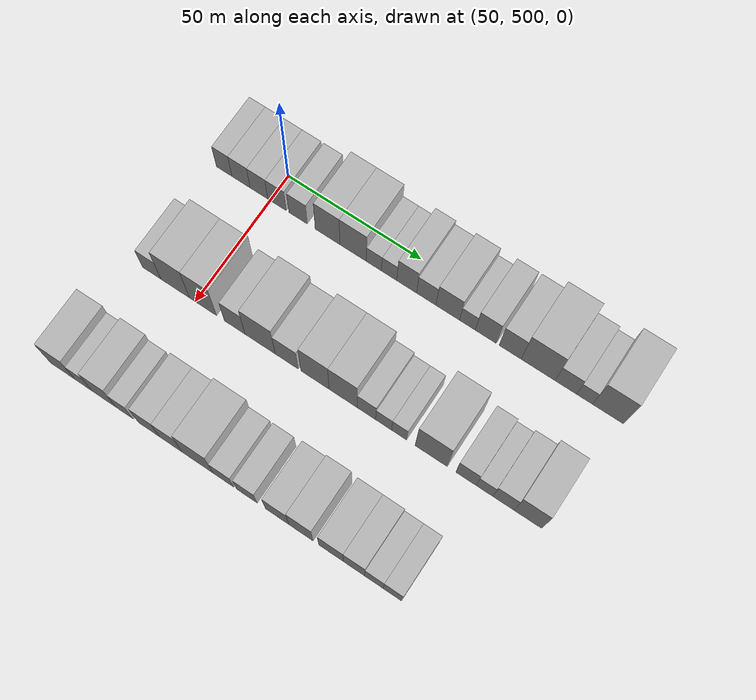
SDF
<sdf version="1.6">
 <world name="default">
  <model name="building_126">
   <static>1</static>
   <pose>50.0000 482.4028 0 0.000000 0.000000 0.000000</pose>
   <link name="link">
    <pose>0 0 7.50 0 0 0</pose>
    <collision name="collision"><geometry><box><size>20.0000 6.0003 15.0000</size></box></geometry></collision>
    <visual name="visual">
     <cast_shadows>0</cast_shadows>
     <geometry><box><size>20.0000 6.0003 15.0000</size></box></geometry>
     <material>
      <script>
       <uri>model://HANNAS_wall/materials/scripts</uri>
       <uri>model://HANNAS_wall/materials/textures</uri>
       <name>vrc/HANNAS_wall</name>
      </script>
     </material>
    </visual>
   </link>
  </model>
  <model name="building_127">
   <static>1</static>
   <pose>50.0000 488.8946 0 0.000000 0.000000 0.000000</pose>
   <link name="link">
    <pose>0 0 7.50 0 0 0</pose>
    <collision name="collision"><geometry><box><size>20.0000 6.9833 15.0000</size></box></geometry></collision>
    <visual name="visual">
     <cast_shadows>0</cast_shadows>
     <geometry><box><size>20.0000 6.9833 15.0000</size></box></geometry>
     <material>
      <script>
       <uri>model://HANNAS_wall/materials/scripts</uri>
       <uri>model://HANNAS_wall/materials/textures</uri>
       <name>vrc/HANNAS_wall</name>
      </script>
     </material>
    </visual>
   </link>
  </model>
  <model name="building_128">
   <static>1</static>
   <pose>50.0000 495.7840 0 0.000000 0.000000 0.000000</pose>
   <link name="link">
    <pose>0 0 7.50 0 0 0</pose>
    <collision name="collision"><geometry><box><size>20.0000 6.7955 15.0000</size></box></geometry></collision>
    <visual name="visual">
     <cast_shadows>0</cast_shadows>
     <geometry><box><size>20.0000 6.7955 15.0000</size></box></geometry>
     <material>
      <script>
       <uri>model://HANNAS_wall/materials/scripts</uri>
       <uri>model://HANNAS_wall/materials/textures</uri>
       <name>vrc/HANNAS_wall</name>
      </script>
     </material>
    </visual>
   </link>
  </model>
  <model name="building_129">
   <static>1</static>
   <pose>50.0000 502.6778 0 0.000000 0.000000 0.000000</pose>
   <link name="link">
    <pose>0 0 7.50 0 0 0</pose>
    <collision name="collision"><geometry><box><size>20.0000 6.9922 15.0000</size></box></geometry></collision>
    <visual name="visual">
     <cast_shadows>0</cast_shadows>
     <geometry><box><size>20.0000 6.9922 15.0000</size></box></geometry>
     <material>
      <script>
       <uri>model://HANNAS_wall/materials/scripts</uri>
       <uri>model://HANNAS_wall/materials/textures</uri>
       <name>vrc/HANNAS_wall</name>
      </script>
     </material>
    </visual>
   </link>
  </model>
  <model name="building_130">
   <static>1</static>
   <pose>50.0000 510.6487 0 0.000000 0.000000 0.000000</pose>
   <link name="link">
    <pose>0 0 7.50 0 0 0</pose>
    <collision name="collision"><geometry><box><size>20.0000 6.9495 15.0000</size></box></geometry></collision>
    <visual name="visual">
     <cast_shadows>0</cast_shadows>
     <geometry><box><size>20.0000 6.9495 15.0000</size></box></geometry>
     <material>
      <script>
       <uri>model://HANNAS_wall/materials/scripts</uri>
       <uri>model://HANNAS_wall/materials/textures</uri>
       <name>vrc/HANNAS_wall</name>
      </script>
     </material>
    </visual>
   </link>
  </model>
  <model name="building_131">
   <static>1</static>
   <pose>50.0000 521.7408 0 0.000000 0.000000 0.000000</pose>
   <link name="link">
    <pose>0 0 10.50 0 0 0</pose>
    <collision name="collision"><geometry><box><size>20.0000 9.2348 21.0000</size></box></geometry></collision>
    <visual name="visual">
     <cast_shadows>0</cast_shadows>
     <geometry><box><size>20.0000 9.2348 21.0000</size></box></geometry>
     <material>
      <script>
       <uri>model://HANNAS_wall/materials/scripts</uri>
       <uri>model://HANNAS_wall/materials/textures</uri>
       <name>vrc/HANNAS_wall</name>
      </script>
     </material>
    </visual>
   </link>
  </model>
  <model name="building_132">
   <static>1</static>
   <pose>50.0000 531.2715 0 0.000000 0.000000 0.000000</pose>
   <link name="link">
    <pose>0 0 10.50 0 0 0</pose>
    <collision name="collision"><geometry><box><size>20.0000 9.8266 21.0000</size></box></geometry></collision>
    <visual name="visual">
     <cast_shadows>0</cast_shadows>
     <geometry><box><size>20.0000 9.8266 21.0000</size></box></geometry>
     <material>
      <script>
       <uri>model://HANNAS_wall/materials/scripts</uri>
       <uri>model://HANNAS_wall/materials/textures</uri>
       <name>vrc/HANNAS_wall</name>
      </script>
     </material>
    </visual>
   </link>
  </model>
  <model name="building_133">
   <static>1</static>
   <pose>50.0000 538.9945 0 0.000000 0.000000 0.000000</pose>
   <link name="link">
    <pose>0 0 6.00 0 0 0</pose>
    <collision name="collision"><geometry><box><size>20.0000 5.6192 12.0000</size></box></geometry></collision>
    <visual name="visual">
     <cast_shadows>0</cast_shadows>
     <geometry><box><size>20.0000 5.6192 12.0000</size></box></geometry>
     <material>
      <script>
       <uri>model://HANNAS_wall/materials/scripts</uri>
       <uri>model://HANNAS_wall/materials/textures</uri>
       <name>vrc/HANNAS_wall</name>
      </script>
     </material>
    </visual>
   </link>
  </model>
  <model name="building_134">
   <static>1</static>
   <pose>50.0000 544.6133 0 0.000000 0.000000 0.000000</pose>
   <link name="link">
    <pose>0 0 6.00 0 0 0</pose>
    <collision name="collision"><geometry><box><size>20.0000 5.6184 12.0000</size></box></geometry></collision>
    <visual name="visual">
     <cast_shadows>0</cast_shadows>
     <geometry><box><size>20.0000 5.6184 12.0000</size></box></geometry>
     <material>
      <script>
       <uri>model://HANNAS_wall/materials/scripts</uri>
       <uri>model://HANNAS_wall/materials/textures</uri>
       <name>vrc/HANNAS_wall</name>
      </script>
     </material>
    </visual>
   </link>
  </model>
  <model name="building_135">
   <static>1</static>
   <pose>50.0000 551.0508 0 0.000000 0.000000 0.000000</pose>
   <link name="link">
    <pose>0 0 9.00 0 0 0</pose>
    <collision name="collision"><geometry><box><size>20.0000 7.2566 18.0000</size></box></geometry></collision>
    <visual name="visual">
     <cast_shadows>0</cast_shadows>
     <geometry><box><size>20.0000 7.2566 18.0000</size></box></geometry>
     <material>
      <script>
       <uri>model://HANNAS_wall/materials/scripts</uri>
       <uri>model://HANNAS_wall/materials/textures</uri>
       <name>vrc/HANNAS_wall</name>
      </script>
     </material>
    </visual>
   </link>
  </model>
  <model name="building_136">
   <static>1</static>
   <pose>50.0000 558.1963 0 0.000000 0.000000 0.000000</pose>
   <link name="link">
    <pose>0 0 7.50 0 0 0</pose>
    <collision name="collision"><geometry><box><size>20.0000 7.0344 15.0000</size></box></geometry></collision>
    <visual name="visual">
     <cast_shadows>0</cast_shadows>
     <geometry><box><size>20.0000 7.0344 15.0000</size></box></geometry>
     <material>
      <script>
       <uri>model://HANNAS_wall/materials/scripts</uri>
       <uri>model://HANNAS_wall/materials/textures</uri>
       <name>vrc/HANNAS_wall</name>
      </script>
     </material>
    </visual>
   </link>
  </model>
  <model name="building_137">
   <static>1</static>
   <pose>50.0000 566.0190 0 0.000000 0.000000 0.000000</pose>
   <link name="link">
    <pose>0 0 9.00 0 0 0</pose>
    <collision name="collision"><geometry><box><size>20.0000 8.6110 18.0000</size></box></geometry></collision>
    <visual name="visual">
     <cast_shadows>0</cast_shadows>
     <geometry><box><size>20.0000 8.6110 18.0000</size></box></geometry>
     <material>
      <script>
       <uri>model://HANNAS_wall/materials/scripts</uri>
       <uri>model://HANNAS_wall/materials/textures</uri>
       <name>vrc/HANNAS_wall</name>
      </script>
     </material>
    </visual>
   </link>
  </model>
  <model name="building_138">
   <static>1</static>
   <pose>50.0000 573.1528 0 0.000000 0.000000 0.000000</pose>
   <link name="link">
    <pose>0 0 6.00 0 0 0</pose>
    <collision name="collision"><geometry><box><size>20.0000 5.6566 12.0000</size></box></geometry></collision>
    <visual name="visual">
     <cast_shadows>0</cast_shadows>
     <geometry><box><size>20.0000 5.6566 12.0000</size></box></geometry>
     <material>
      <script>
       <uri>model://HANNAS_wall/materials/scripts</uri>
       <uri>model://HANNAS_wall/materials/textures</uri>
       <name>vrc/HANNAS_wall</name>
      </script>
     </material>
    </visual>
   </link>
  </model>
  <model name="building_139">
   <static>1</static>
   <pose>50.0000 579.7498 0 0.000000 0.000000 0.000000</pose>
   <link name="link">
    <pose>0 0 9.00 0 0 0</pose>
    <collision name="collision"><geometry><box><size>20.0000 7.5374 18.0000</size></box></geometry></collision>
    <visual name="visual">
     <cast_shadows>0</cast_shadows>
     <geometry><box><size>20.0000 7.5374 18.0000</size></box></geometry>
     <material>
      <script>
       <uri>model://HANNAS_wall/materials/scripts</uri>
       <uri>model://HANNAS_wall/materials/textures</uri>
       <name>vrc/HANNAS_wall</name>
      </script>
     </material>
    </visual>
   </link>
  </model>
  <model name="building_140">
   <static>1</static>
   <pose>50.0000 588.4278 0 0.000000 0.000000 0.000000</pose>
   <link name="link">
    <pose>0 0 9.00 0 0 0</pose>
    <collision name="collision"><geometry><box><size>20.0000 7.8184 18.0000</size></box></geometry></collision>
    <visual name="visual">
     <cast_shadows>0</cast_shadows>
     <geometry><box><size>20.0000 7.8184 18.0000</size></box></geometry>
     <material>
      <script>
       <uri>model://HANNAS_wall/materials/scripts</uri>
       <uri>model://HANNAS_wall/materials/textures</uri>
       <name>vrc/HANNAS_wall</name>
      </script>
     </material>
    </visual>
   </link>
  </model>
  <model name="building_141">
   <static>1</static>
   <pose>50.0000 598.3368 0 0.000000 0.000000 0.000000</pose>
   <link name="link">
    <pose>0 0 12.00 0 0 0</pose>
    <collision name="collision"><geometry><box><size>20.0000 11.9997 24.0000</size></box></geometry></collision>
    <visual name="visual">
     <cast_shadows>0</cast_shadows>
     <geometry><box><size>20.0000 11.9997 24.0000</size></box></geometry>
     <material>
      <script>
       <uri>model://HANNAS_wall/materials/scripts</uri>
       <uri>model://HANNAS_wall/materials/textures</uri>
       <name>vrc/HANNAS_wall</name>
      </script>
     </material>
    </visual>
   </link>
  </model>
  <model name="building_142">
   <static>1</static>
   <pose>50.0000 608.0740 0 0.000000 0.000000 0.000000</pose>
   <link name="link">
    <pose>0 0 7.50 0 0 0</pose>
    <collision name="collision"><geometry><box><size>20.0000 7.4747 15.0000</size></box></geometry></collision>
    <visual name="visual">
     <cast_shadows>0</cast_shadows>
     <geometry><box><size>20.0000 7.4747 15.0000</size></box></geometry>
     <material>
      <script>
       <uri>model://HANNAS_wall/materials/scripts</uri>
       <uri>model://HANNAS_wall/materials/textures</uri>
       <name>vrc/HANNAS_wall</name>
      </script>
     </material>
    </visual>
   </link>
  </model>
  <model name="building_143">
   <static>1</static>
   <pose>50.0000 614.6092 0 0.000000 0.000000 0.000000</pose>
   <link name="link">
    <pose>0 0 6.00 0 0 0</pose>
    <collision name="collision"><geometry><box><size>20.0000 5.5957 12.0000</size></box></geometry></collision>
    <visual name="visual">
     <cast_shadows>0</cast_shadows>
     <geometry><box><size>20.0000 5.5957 12.0000</size></box></geometry>
     <material>
      <script>
       <uri>model://HANNAS_wall/materials/scripts</uri>
       <uri>model://HANNAS_wall/materials/textures</uri>
       <name>vrc/HANNAS_wall</name>
      </script>
     </material>
    </visual>
   </link>
  </model>
  <model name="building_144">
   <static>1</static>
   <pose>50.0000 622.8073 0 0.000000 0.000000 0.000000</pose>
   <link name="link">
    <pose>0 0 12.00 0 0 0</pose>
    <collision name="collision"><geometry><box><size>20.0000 10.8005 24.0000</size></box></geometry></collision>
    <visual name="visual">
     <cast_shadows>0</cast_shadows>
     <geometry><box><size>20.0000 10.8005 24.0000</size></box></geometry>
     <material>
      <script>
       <uri>model://HANNAS_wall/materials/scripts</uri>
       <uri>model://HANNAS_wall/materials/textures</uri>
       <name>vrc/HANNAS_wall</name>
      </script>
     </material>
    </visual>
   </link>
  </model>
  <model name="building_266">
   <static>1</static>
   <pose>90.0000 483.5444 0 0.000000 0.000000 0.000000</pose>
   <link name="link">
    <pose>0 0 7.50 0 0 0</pose>
    <collision name="collision"><geometry><box><size>20.0000 7.0628 15.0000</size></box></geometry></collision>
    <visual name="visual">
     <cast_shadows>0</cast_shadows>
     <geometry><box><size>20.0000 7.0628 15.0000</size></box></geometry>
     <material>
      <script>
       <uri>model://HANNAS_wall/materials/scripts</uri>
       <uri>model://HANNAS_wall/materials/textures</uri>
       <name>vrc/HANNAS_wall</name>
      </script>
     </material>
    </visual>
   </link>
  </model>
  <model name="building_267">
   <static>1</static>
   <pose>90.0000 492.4960 0 0.000000 0.000000 0.000000</pose>
   <link name="link">
    <pose>0 0 12.00 0 0 0</pose>
    <collision name="collision"><geometry><box><size>20.0000 10.8405 24.0000</size></box></geometry></collision>
    <visual name="visual">
     <cast_shadows>0</cast_shadows>
     <geometry><box><size>20.0000 10.8405 24.0000</size></box></geometry>
     <material>
      <script>
       <uri>model://HANNAS_wall/materials/scripts</uri>
       <uri>model://HANNAS_wall/materials/textures</uri>
       <name>vrc/HANNAS_wall</name>
      </script>
     </material>
    </visual>
   </link>
  </model>
  <model name="building_268">
   <static>1</static>
   <pose>90.0000 502.9726 0 0.000000 0.000000 0.000000</pose>
   <link name="link">
    <pose>0 0 12.00 0 0 0</pose>
    <collision name="collision"><geometry><box><size>20.0000 10.1127 24.0000</size></box></geometry></collision>
    <visual name="visual">
     <cast_shadows>0</cast_shadows>
     <geometry><box><size>20.0000 10.1127 24.0000</size></box></geometry>
     <material>
      <script>
       <uri>model://HANNAS_wall/materials/scripts</uri>
       <uri>model://HANNAS_wall/materials/textures</uri>
       <name>vrc/HANNAS_wall</name>
      </script>
     </material>
    </visual>
   </link>
  </model>
  <model name="building_269">
   <static>1</static>
   <pose>90.0000 514.8615 0 0.000000 0.000000 0.000000</pose>
   <link name="link">
    <pose>0 0 9.00 0 0 0</pose>
    <collision name="collision"><geometry><box><size>20.0000 7.6652 18.0000</size></box></geometry></collision>
    <visual name="visual">
     <cast_shadows>0</cast_shadows>
     <geometry><box><size>20.0000 7.6652 18.0000</size></box></geometry>
     <material>
      <script>
       <uri>model://HANNAS_wall/materials/scripts</uri>
       <uri>model://HANNAS_wall/materials/textures</uri>
       <name>vrc/HANNAS_wall</name>
      </script>
     </material>
    </visual>
   </link>
  </model>
  <model name="building_270">
   <static>1</static>
   <pose>90.0000 524.2564 0 0.000000 0.000000 0.000000</pose>
   <link name="link">
    <pose>0 0 12.00 0 0 0</pose>
    <collision name="collision"><geometry><box><size>20.0000 11.1245 24.0000</size></box></geometry></collision>
    <visual name="visual">
     <cast_shadows>0</cast_shadows>
     <geometry><box><size>20.0000 11.1245 24.0000</size></box></geometry>
     <material>
      <script>
       <uri>model://HANNAS_wall/materials/scripts</uri>
       <uri>model://HANNAS_wall/materials/textures</uri>
       <name>vrc/HANNAS_wall</name>
      </script>
     </material>
    </visual>
   </link>
  </model>
  <model name="building_271">
   <static>1</static>
   <pose>90.0000 534.0324 0 0.000000 0.000000 0.000000</pose>
   <link name="link">
    <pose>0 0 9.00 0 0 0</pose>
    <collision name="collision"><geometry><box><size>20.0000 8.4276 18.0000</size></box></geometry></collision>
    <visual name="visual">
     <cast_shadows>0</cast_shadows>
     <geometry><box><size>20.0000 8.4276 18.0000</size></box></geometry>
     <material>
      <script>
       <uri>model://HANNAS_wall/materials/scripts</uri>
       <uri>model://HANNAS_wall/materials/textures</uri>
       <name>vrc/HANNAS_wall</name>
      </script>
     </material>
    </visual>
   </link>
  </model>
  <model name="building_272">
   <static>1</static>
   <pose>90.0000 544.3487 0 0.000000 0.000000 0.000000</pose>
   <link name="link">
    <pose>0 0 12.00 0 0 0</pose>
    <collision name="collision"><geometry><box><size>20.0000 10.2050 24.0000</size></box></geometry></collision>
    <visual name="visual">
     <cast_shadows>0</cast_shadows>
     <geometry><box><size>20.0000 10.2050 24.0000</size></box></geometry>
     <material>
      <script>
       <uri>model://HANNAS_wall/materials/scripts</uri>
       <uri>model://HANNAS_wall/materials/textures</uri>
       <name>vrc/HANNAS_wall</name>
      </script>
     </material>
    </visual>
   </link>
  </model>
  <model name="building_273">
   <static>1</static>
   <pose>90.0000 554.5159 0 0.000000 0.000000 0.000000</pose>
   <link name="link">
    <pose>0 0 12.00 0 0 0</pose>
    <collision name="collision"><geometry><box><size>20.0000 10.1295 24.0000</size></box></geometry></collision>
    <visual name="visual">
     <cast_shadows>0</cast_shadows>
     <geometry><box><size>20.0000 10.1295 24.0000</size></box></geometry>
     <material>
      <script>
       <uri>model://HANNAS_wall/materials/scripts</uri>
       <uri>model://HANNAS_wall/materials/textures</uri>
       <name>vrc/HANNAS_wall</name>
      </script>
     </material>
    </visual>
   </link>
  </model>
  <model name="building_274">
   <static>1</static>
   <pose>90.0000 562.8839 0 0.000000 0.000000 0.000000</pose>
   <link name="link">
    <pose>0 0 7.50 0 0 0</pose>
    <collision name="collision"><geometry><box><size>20.0000 6.6065 15.0000</size></box></geometry></collision>
    <visual name="visual">
     <cast_shadows>0</cast_shadows>
     <geometry><box><size>20.0000 6.6065 15.0000</size></box></geometry>
     <material>
      <script>
       <uri>model://HANNAS_wall/materials/scripts</uri>
       <uri>model://HANNAS_wall/materials/textures</uri>
       <name>vrc/HANNAS_wall</name>
      </script>
     </material>
    </visual>
   </link>
  </model>
  <model name="building_275">
   <static>1</static>
   <pose>90.0000 569.0177 0 0.000000 0.000000 0.000000</pose>
   <link name="link">
    <pose>0 0 6.00 0 0 0</pose>
    <collision name="collision"><geometry><box><size>20.0000 5.6609 12.0000</size></box></geometry></collision>
    <visual name="visual">
     <cast_shadows>0</cast_shadows>
     <geometry><box><size>20.0000 5.6609 12.0000</size></box></geometry>
     <material>
      <script>
       <uri>model://HANNAS_wall/materials/scripts</uri>
       <uri>model://HANNAS_wall/materials/textures</uri>
       <name>vrc/HANNAS_wall</name>
      </script>
     </material>
    </visual>
   </link>
  </model>
  <model name="building_276">
   <static>1</static>
   <pose>90.0000 574.5336 0 0.000000 0.000000 0.000000</pose>
   <link name="link">
    <pose>0 0 6.00 0 0 0</pose>
    <collision name="collision"><geometry><box><size>20.0000 5.3709 12.0000</size></box></geometry></collision>
    <visual name="visual">
     <cast_shadows>0</cast_shadows>
     <geometry><box><size>20.0000 5.3709 12.0000</size></box></geometry>
     <material>
      <script>
       <uri>model://HANNAS_wall/materials/scripts</uri>
       <uri>model://HANNAS_wall/materials/textures</uri>
       <name>vrc/HANNAS_wall</name>
      </script>
     </material>
    </visual>
   </link>
  </model>
  <model name="building_277">
   <static>1</static>
   <pose>90.0000 585.8658 0 0.000000 0.000000 0.000000</pose>
   <link name="link">
    <pose>0 0 12.00 0 0 0</pose>
    <collision name="collision"><geometry><box><size>20.0000 11.2936 24.0000</size></box></geometry></collision>
    <visual name="visual">
     <cast_shadows>0</cast_shadows>
     <geometry><box><size>20.0000 11.2936 24.0000</size></box></geometry>
     <material>
      <script>
       <uri>model://HANNAS_wall/materials/scripts</uri>
       <uri>model://HANNAS_wall/materials/textures</uri>
       <name>vrc/HANNAS_wall</name>
      </script>
     </material>
    </visual>
   </link>
  </model>
  <model name="building_278">
   <static>1</static>
   <pose>90.0000 598.0640 0 0.000000 0.000000 0.000000</pose>
   <link name="link">
    <pose>0 0 7.50 0 0 0</pose>
    <collision name="collision"><geometry><box><size>20.0000 7.1029 15.0000</size></box></geometry></collision>
    <visual name="visual">
     <cast_shadows>0</cast_shadows>
     <geometry><box><size>20.0000 7.1029 15.0000</size></box></geometry>
     <material>
      <script>
       <uri>model://HANNAS_wall/materials/scripts</uri>
       <uri>model://HANNAS_wall/materials/textures</uri>
       <name>vrc/HANNAS_wall</name>
      </script>
     </material>
    </visual>
   </link>
  </model>
  <model name="building_279">
   <static>1</static>
   <pose>90.0000 604.4765 0 0.000000 0.000000 0.000000</pose>
   <link name="link">
    <pose>0 0 6.00 0 0 0</pose>
    <collision name="collision"><geometry><box><size>20.0000 5.7220 12.0000</size></box></geometry></collision>
    <visual name="visual">
     <cast_shadows>0</cast_shadows>
     <geometry><box><size>20.0000 5.7220 12.0000</size></box></geometry>
     <material>
      <script>
       <uri>model://HANNAS_wall/materials/scripts</uri>
       <uri>model://HANNAS_wall/materials/textures</uri>
       <name>vrc/HANNAS_wall</name>
      </script>
     </material>
    </visual>
   </link>
  </model>
  <model name="building_280">
   <static>1</static>
   <pose>90.0000 611.0382 0 0.000000 0.000000 0.000000</pose>
   <link name="link">
    <pose>0 0 7.50 0 0 0</pose>
    <collision name="collision"><geometry><box><size>20.0000 7.4013 15.0000</size></box></geometry></collision>
    <visual name="visual">
     <cast_shadows>0</cast_shadows>
     <geometry><box><size>20.0000 7.4013 15.0000</size></box></geometry>
     <material>
      <script>
       <uri>model://HANNAS_wall/materials/scripts</uri>
       <uri>model://HANNAS_wall/materials/textures</uri>
       <name>vrc/HANNAS_wall</name>
      </script>
     </material>
    </visual>
   </link>
  </model>
  <model name="building_281">
   <static>1</static>
   <pose>90.0000 619.4320 0 0.000000 0.000000 0.000000</pose>
   <link name="link">
    <pose>0 0 10.50 0 0 0</pose>
    <collision name="collision"><geometry><box><size>20.0000 9.3862 21.0000</size></box></geometry></collision>
    <visual name="visual">
     <cast_shadows>0</cast_shadows>
     <geometry><box><size>20.0000 9.3862 21.0000</size></box></geometry>
     <material>
      <script>
       <uri>model://HANNAS_wall/materials/scripts</uri>
       <uri>model://HANNAS_wall/materials/textures</uri>
       <name>vrc/HANNAS_wall</name>
      </script>
     </material>
    </visual>
   </link>
  </model>
  <model name="building_393">
   <static>1</static>
   <pose>130.0000 479.9217 0 0.000000 0.000000 0.000000</pose>
   <link name="link">
    <pose>0 0 10.50 0 0 0</pose>
    <collision name="collision"><geometry><box><size>20.0000 9.3787 21.0000</size></box></geometry></collision>
    <visual name="visual">
     <cast_shadows>0</cast_shadows>
     <geometry><box><size>20.0000 9.3787 21.0000</size></box></geometry>
     <material>
      <script>
       <uri>model://HANNAS_wall/materials/scripts</uri>
       <uri>model://HANNAS_wall/materials/textures</uri>
       <name>vrc/HANNAS_wall</name>
      </script>
     </material>
    </visual>
   </link>
  </model>
  <model name="building_394">
   <static>1</static>
   <pose>130.0000 487.7719 0 0.000000 0.000000 0.000000</pose>
   <link name="link">
    <pose>0 0 7.50 0 0 0</pose>
    <collision name="collision"><geometry><box><size>20.0000 6.3217 15.0000</size></box></geometry></collision>
    <visual name="visual">
     <cast_shadows>0</cast_shadows>
     <geometry><box><size>20.0000 6.3217 15.0000</size></box></geometry>
     <material>
      <script>
       <uri>model://HANNAS_wall/materials/scripts</uri>
       <uri>model://HANNAS_wall/materials/textures</uri>
       <name>vrc/HANNAS_wall</name>
      </script>
     </material>
    </visual>
   </link>
  </model>
  <model name="building_395">
   <static>1</static>
   <pose>130.0000 495.3944 0 0.000000 0.000000 0.000000</pose>
   <link name="link">
    <pose>0 0 10.50 0 0 0</pose>
    <collision name="collision"><geometry><box><size>20.0000 8.9233 21.0000</size></box></geometry></collision>
    <visual name="visual">
     <cast_shadows>0</cast_shadows>
     <geometry><box><size>20.0000 8.9233 21.0000</size></box></geometry>
     <material>
      <script>
       <uri>model://HANNAS_wall/materials/scripts</uri>
       <uri>model://HANNAS_wall/materials/textures</uri>
       <name>vrc/HANNAS_wall</name>
      </script>
     </material>
    </visual>
   </link>
  </model>
  <model name="building_396">
   <static>1</static>
   <pose>130.0000 503.0175 0 0.000000 0.000000 0.000000</pose>
   <link name="link">
    <pose>0 0 7.50 0 0 0</pose>
    <collision name="collision"><geometry><box><size>20.0000 6.3229 15.0000</size></box></geometry></collision>
    <visual name="visual">
     <cast_shadows>0</cast_shadows>
     <geometry><box><size>20.0000 6.3229 15.0000</size></box></geometry>
     <material>
      <script>
       <uri>model://HANNAS_wall/materials/scripts</uri>
       <uri>model://HANNAS_wall/materials/textures</uri>
       <name>vrc/HANNAS_wall</name>
      </script>
     </material>
    </visual>
   </link>
  </model>
  <model name="building_397">
   <static>1</static>
   <pose>130.0000 512.0896 0 0.000000 0.000000 0.000000</pose>
   <link name="link">
    <pose>0 0 9.00 0 0 0</pose>
    <collision name="collision"><geometry><box><size>20.0000 7.8212 18.0000</size></box></geometry></collision>
    <visual name="visual">
     <cast_shadows>0</cast_shadows>
     <geometry><box><size>20.0000 7.8212 18.0000</size></box></geometry>
     <material>
      <script>
       <uri>model://HANNAS_wall/materials/scripts</uri>
       <uri>model://HANNAS_wall/materials/textures</uri>
       <name>vrc/HANNAS_wall</name>
      </script>
     </material>
    </visual>
   </link>
  </model>
  <model name="building_398">
   <static>1</static>
   <pose>130.0000 520.1320 0 0.000000 0.000000 0.000000</pose>
   <link name="link">
    <pose>0 0 9.00 0 0 0</pose>
    <collision name="collision"><geometry><box><size>20.0000 8.2636 18.0000</size></box></geometry></collision>
    <visual name="visual">
     <cast_shadows>0</cast_shadows>
     <geometry><box><size>20.0000 8.2636 18.0000</size></box></geometry>
     <material>
      <script>
       <uri>model://HANNAS_wall/materials/scripts</uri>
       <uri>model://HANNAS_wall/materials/textures</uri>
       <name>vrc/HANNAS_wall</name>
      </script>
     </material>
    </visual>
   </link>
  </model>
  <model name="building_399">
   <static>1</static>
   <pose>130.0000 529.9085 0 0.000000 0.000000 0.000000</pose>
   <link name="link">
    <pose>0 0 12.00 0 0 0</pose>
    <collision name="collision"><geometry><box><size>20.0000 11.2896 24.0000</size></box></geometry></collision>
    <visual name="visual">
     <cast_shadows>0</cast_shadows>
     <geometry><box><size>20.0000 11.2896 24.0000</size></box></geometry>
     <material>
      <script>
       <uri>model://HANNAS_wall/materials/scripts</uri>
       <uri>model://HANNAS_wall/materials/textures</uri>
       <name>vrc/HANNAS_wall</name>
      </script>
     </material>
    </visual>
   </link>
  </model>
  <model name="building_400">
   <static>1</static>
   <pose>130.0000 539.2421 0 0.000000 0.000000 0.000000</pose>
   <link name="link">
    <pose>0 0 7.50 0 0 0</pose>
    <collision name="collision"><geometry><box><size>20.0000 7.3776 15.0000</size></box></geometry></collision>
    <visual name="visual">
     <cast_shadows>0</cast_shadows>
     <geometry><box><size>20.0000 7.3776 15.0000</size></box></geometry>
     <material>
      <script>
       <uri>model://HANNAS_wall/materials/scripts</uri>
       <uri>model://HANNAS_wall/materials/textures</uri>
       <name>vrc/HANNAS_wall</name>
      </script>
     </material>
    </visual>
   </link>
  </model>
  <model name="building_401">
   <static>1</static>
   <pose>130.0000 547.5803 0 0.000000 0.000000 0.000000</pose>
   <link name="link">
    <pose>0 0 7.50 0 0 0</pose>
    <collision name="collision"><geometry><box><size>20.0000 7.2987 15.0000</size></box></geometry></collision>
    <visual name="visual">
     <cast_shadows>0</cast_shadows>
     <geometry><box><size>20.0000 7.2987 15.0000</size></box></geometry>
     <material>
      <script>
       <uri>model://HANNAS_wall/materials/scripts</uri>
       <uri>model://HANNAS_wall/materials/textures</uri>
       <name>vrc/HANNAS_wall</name>
      </script>
     </material>
    </visual>
   </link>
  </model>
  <model name="building_402">
   <static>1</static>
   <pose>130.0000 558.3812 0 0.000000 0.000000 0.000000</pose>
   <link name="link">
    <pose>0 0 9.00 0 0 0</pose>
    <collision name="collision"><geometry><box><size>20.0000 8.3031 18.0000</size></box></geometry></collision>
    <visual name="visual">
     <cast_shadows>0</cast_shadows>
     <geometry><box><size>20.0000 8.3031 18.0000</size></box></geometry>
     <material>
      <script>
       <uri>model://HANNAS_wall/materials/scripts</uri>
       <uri>model://HANNAS_wall/materials/textures</uri>
       <name>vrc/HANNAS_wall</name>
      </script>
     </material>
    </visual>
   </link>
  </model>
  <model name="building_403">
   <static>1</static>
   <pose>130.0000 566.7790 0 0.000000 0.000000 0.000000</pose>
   <link name="link">
    <pose>0 0 10.50 0 0 0</pose>
    <collision name="collision"><geometry><box><size>20.0000 8.4926 21.0000</size></box></geometry></collision>
    <visual name="visual">
     <cast_shadows>0</cast_shadows>
     <geometry><box><size>20.0000 8.4926 21.0000</size></box></geometry>
     <material>
      <script>
       <uri>model://HANNAS_wall/materials/scripts</uri>
       <uri>model://HANNAS_wall/materials/textures</uri>
       <name>vrc/HANNAS_wall</name>
      </script>
     </material>
    </visual>
   </link>
  </model>
  <model name="building_404">
   <static>1</static>
   <pose>130.0000 577.2942 0 0.000000 0.000000 0.000000</pose>
   <link name="link">
    <pose>0 0 9.00 0 0 0</pose>
    <collision name="collision"><geometry><box><size>20.0000 8.5377 18.0000</size></box></geometry></collision>
    <visual name="visual">
     <cast_shadows>0</cast_shadows>
     <geometry><box><size>20.0000 8.5377 18.0000</size></box></geometry>
     <material>
      <script>
       <uri>model://HANNAS_wall/materials/scripts</uri>
       <uri>model://HANNAS_wall/materials/textures</uri>
       <name>vrc/HANNAS_wall</name>
      </script>
     </material>
    </visual>
   </link>
  </model>
  <model name="building_405">
   <static>1</static>
   <pose>130.0000 585.2367 0 0.000000 0.000000 0.000000</pose>
   <link name="link">
    <pose>0 0 9.00 0 0 0</pose>
    <collision name="collision"><geometry><box><size>20.0000 7.3474 18.0000</size></box></geometry></collision>
    <visual name="visual">
     <cast_shadows>0</cast_shadows>
     <geometry><box><size>20.0000 7.3474 18.0000</size></box></geometry>
     <material>
      <script>
       <uri>model://HANNAS_wall/materials/scripts</uri>
       <uri>model://HANNAS_wall/materials/textures</uri>
       <name>vrc/HANNAS_wall</name>
      </script>
     </material>
    </visual>
   </link>
  </model>
  <model name="building_406">
   <static>1</static>
   <pose>130.0000 592.1115 0 0.000000 0.000000 0.000000</pose>
   <link name="link">
    <pose>0 0 7.50 0 0 0</pose>
    <collision name="collision"><geometry><box><size>20.0000 6.4022 15.0000</size></box></geometry></collision>
    <visual name="visual">
     <cast_shadows>0</cast_shadows>
     <geometry><box><size>20.0000 6.4022 15.0000</size></box></geometry>
     <material>
      <script>
       <uri>model://HANNAS_wall/materials/scripts</uri>
       <uri>model://HANNAS_wall/materials/textures</uri>
       <name>vrc/HANNAS_wall</name>
      </script>
     </material>
    </visual>
   </link>
  </model>
  <model name="building_407">
   <static>1</static>
   <pose>130.0000 598.4785 0 0.000000 0.000000 0.000000</pose>
   <link name="link">
    <pose>0 0 7.50 0 0 0</pose>
    <collision name="collision"><geometry><box><size>20.0000 6.3319 15.0000</size></box></geometry></collision>
    <visual name="visual">
     <cast_shadows>0</cast_shadows>
     <geometry><box><size>20.0000 6.3319 15.0000</size></box></geometry>
     <material>
      <script>
       <uri>model://HANNAS_wall/materials/scripts</uri>
       <uri>model://HANNAS_wall/materials/textures</uri>
       <name>vrc/HANNAS_wall</name>
      </script>
     </material>
    </visual>
   </link>
  </model>
 </world>
</sdf>
